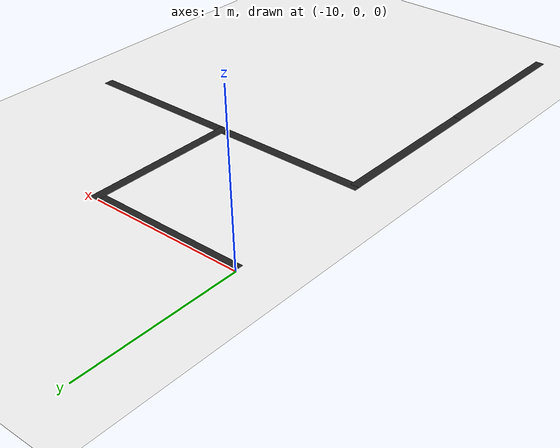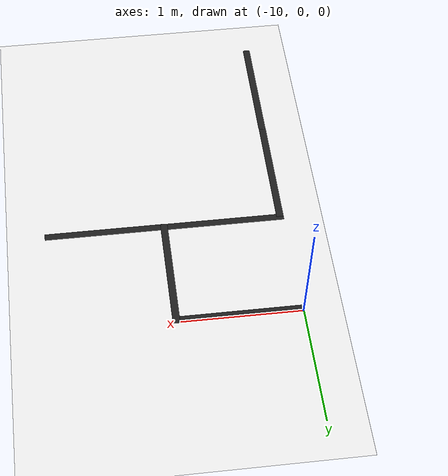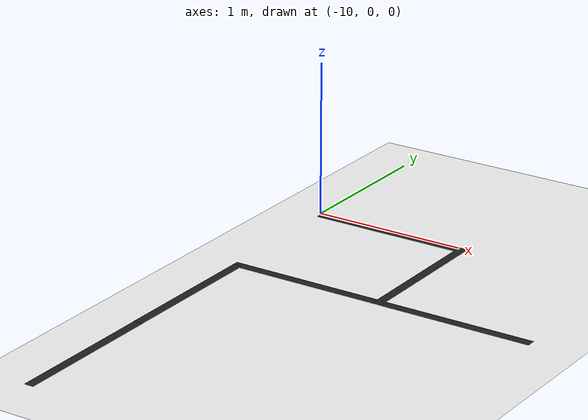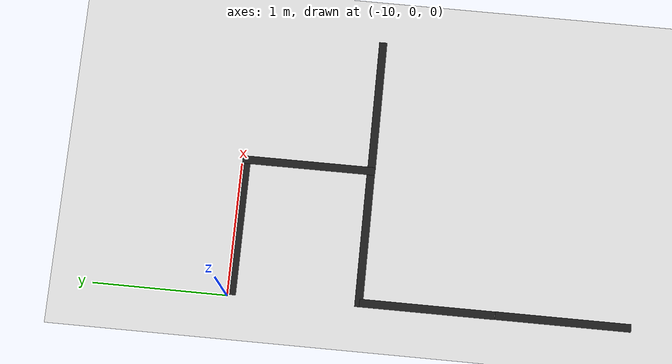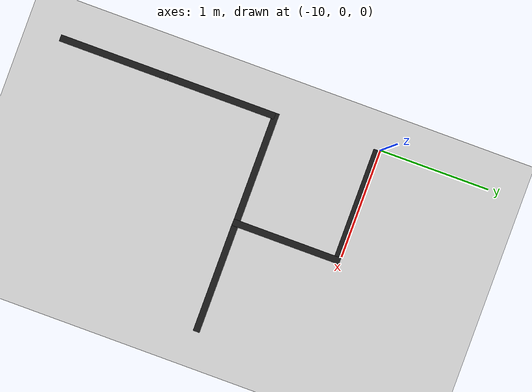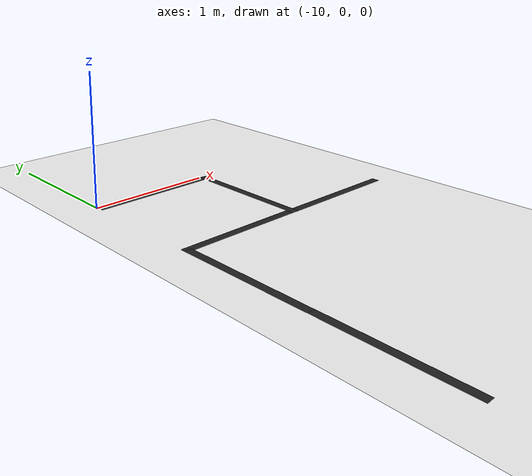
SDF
<sdf version="1.7">
 <world name="default">
  <model name="ground_plane">
   <static>1</static>
   <link name="link">
    <collision name="collision">
     <geometry><plane><normal>0 0 1</normal><size>100 100</size></plane></geometry>
     <surface>
      <contact><collide_bitmask>65535</collide_bitmask></contact>
      <friction><ode><mu>100</mu><mu2>50</mu2></ode></friction>
     </surface>
    </collision>
    <visual name="visual">
     <cast_shadows>0</cast_shadows>
     <geometry><plane><normal>0 0 1</normal><size>100 100</size></plane></geometry>
     <material>
      <script><uri>file://media/materials/scripts/gazebo.material</uri><name>Gazebo/White</name></script>
     </material>
    </visual>
   </link>
  </model>
  <model name="right_segment">
   <link name="right_link">
    <inertial>
     <mass>1</mass>
     <inertia>
      <ixx>0.166667</ixx>
      <ixy>0</ixy>
      <ixz>0</ixz>
      <iyy>0.166667</iyy>
      <iyz>0</iyz>
      <izz>0.166667</izz>
     </inertia>
    </inertial>
    <visual name="visual">
     <geometry><box><size>0.06 1 0.000937</size></box></geometry>
     <material>
      <script><name>Gazebo/Black</name><uri>file://media/materials/scripts/gazebo.material</uri></script>
      <shader type="pixel"><normal_map>__default__</normal_map></shader>
      <ambient>0 0 0 1</ambient>
      <diffuse>0 0 0 1</diffuse>
      <specular>0.1 0.1 0.1 1</specular>
      <emissive>0 0 0 1</emissive>
     </material>
    </visual>
    <collision name="collision">
     <geometry><box><size>0.06 1 0.000937</size></box></geometry>
     <surface>
      <friction>
       <ode><mu>1</mu><mu2>1</mu2><fdir1>0 0 0</fdir1><slip1>0</slip1><slip2>0</slip2></ode>
       <torsional>
        <coefficient>1</coefficient>
        <patch_radius>0</patch_radius>
        <surface_radius>0</surface_radius>
        <use_patch_radius>1</use_patch_radius>
        <ode><slip>0</slip></ode>
       </torsional>
      </friction>
      <bounce><restitution_coefficient>0</restitution_coefficient><threshold>1e+06</threshold></bounce>
      <contact>
       <collide_without_contact>0</collide_without_contact>
       <collide_without_contact_bitmask>1</collide_without_contact_bitmask>
       <collide_bitmask>1</collide_bitmask>
       <ode>
        <soft_cfm>0</soft_cfm>
        <soft_erp>0.2</soft_erp>
        <kp>1e+13</kp>
        <kd>1</kd>
        <max_vel>0.01</max_vel>
        <min_depth>0</min_depth>
       </ode>
       <bullet>
        <split_impulse>1</split_impulse>
        <split_impulse_penetration_threshold>-0.01</split_impulse_penetration_threshold>
        <soft_cfm>0</soft_cfm>
        <soft_erp>0.2</soft_erp>
        <kp>1e+13</kp>
        <kd>1</kd>
       </bullet>
      </contact>
     </surface>
    </collision>
   </link>
   <static>1</static>
   <pose>-8.96406 -0.498196 0.000468 0 -0 1.4e-05</pose>
  </model>
  <model name="segment_0">
   <link name="straight_link">
    <inertial>
     <mass>1</mass>
     <inertia>
      <ixx>0.166667</ixx>
      <ixy>0</ixy>
      <ixz>0</ixz>
      <iyy>0.166667</iyy>
      <iyz>0</iyz>
      <izz>0.166667</izz>
     </inertia>
    </inertial>
    <visual name="visual">
     <geometry><box><size>1 0.06 0.000937</size></box></geometry>
     <material>
      <script><name>Gazebo/Black</name><uri>file://media/materials/scripts/gazebo.material</uri></script>
      <shader type="pixel"><normal_map>__default__</normal_map></shader>
      <ambient>0 0 0 1</ambient>
      <diffuse>0 0 0 1</diffuse>
      <specular>0.1 0.1 0.1 1</specular>
      <emissive>0 0 0 1</emissive>
     </material>
    </visual>
    <collision name="collision">
     <geometry><box><size>1 0.06 0.000937</size></box></geometry>
     <surface>
      <friction>
       <ode><mu>1</mu><mu2>1</mu2><fdir1>0 0 0</fdir1><slip1>0</slip1><slip2>0</slip2></ode>
       <torsional>
        <coefficient>1</coefficient>
        <patch_radius>0</patch_radius>
        <surface_radius>0</surface_radius>
        <use_patch_radius>1</use_patch_radius>
        <ode><slip>0</slip></ode>
       </torsional>
      </friction>
      <bounce><restitution_coefficient>0</restitution_coefficient><threshold>1e+06</threshold></bounce>
      <contact>
       <collide_without_contact>0</collide_without_contact>
       <collide_without_contact_bitmask>1</collide_without_contact_bitmask>
       <collide_bitmask>1</collide_bitmask>
       <ode>
        <soft_cfm>0</soft_cfm>
        <soft_erp>0.2</soft_erp>
        <kp>1e+13</kp>
        <kd>1</kd>
        <max_vel>0.01</max_vel>
        <min_depth>0</min_depth>
       </ode>
       <bullet>
        <split_impulse>1</split_impulse>
        <split_impulse_penetration_threshold>-0.01</split_impulse_penetration_threshold>
        <soft_cfm>0</soft_cfm>
        <soft_erp>0.2</soft_erp>
        <kp>1e+13</kp>
        <kd>1</kd>
       </bullet>
      </contact>
     </surface>
    </collision>
   </link>
   <static>1</static>
   <pose>-9.49128 -0.967715 0 0 -0 0</pose>
  </model>
  <model name="segment_1">
   <link name="straight_link">
    <inertial>
     <mass>1</mass>
     <inertia>
      <ixx>0.166667</ixx>
      <ixy>0</ixy>
      <ixz>0</ixz>
      <iyy>0.166667</iyy>
      <iyz>0</iyz>
      <izz>0.166667</izz>
     </inertia>
    </inertial>
    <visual name="visual">
     <geometry><box><size>1 0.06 0.000937</size></box></geometry>
     <material>
      <script><name>Gazebo/Black</name><uri>file://media/materials/scripts/gazebo.material</uri></script>
      <shader type="pixel"><normal_map>__default__</normal_map></shader>
      <ambient>0 0 0 1</ambient>
      <diffuse>0 0 0 1</diffuse>
      <specular>0.1 0.1 0.1 1</specular>
      <emissive>0 0 0 1</emissive>
     </material>
    </visual>
    <collision name="collision">
     <geometry><box><size>1 0.06 0.000937</size></box></geometry>
     <surface>
      <friction>
       <ode><mu>1</mu><mu2>1</mu2><fdir1>0 0 0</fdir1><slip1>0</slip1><slip2>0</slip2></ode>
       <torsional>
        <coefficient>1</coefficient>
        <patch_radius>0</patch_radius>
        <surface_radius>0</surface_radius>
        <use_patch_radius>1</use_patch_radius>
        <ode><slip>0</slip></ode>
       </torsional>
      </friction>
      <bounce><restitution_coefficient>0</restitution_coefficient><threshold>1e+06</threshold></bounce>
      <contact>
       <collide_without_contact>0</collide_without_contact>
       <collide_without_contact_bitmask>1</collide_without_contact_bitmask>
       <collide_bitmask>1</collide_bitmask>
       <ode>
        <soft_cfm>0</soft_cfm>
        <soft_erp>0.2</soft_erp>
        <kp>1e+13</kp>
        <kd>1</kd>
        <max_vel>0.01</max_vel>
        <min_depth>0</min_depth>
       </ode>
       <bullet>
        <split_impulse>1</split_impulse>
        <split_impulse_penetration_threshold>-0.01</split_impulse_penetration_threshold>
        <soft_cfm>0</soft_cfm>
        <soft_erp>0.2</soft_erp>
        <kp>1e+13</kp>
        <kd>1</kd>
       </bullet>
      </contact>
     </surface>
    </collision>
   </link>
   <static>1</static>
   <pose>-8.45229 -0.969593 0 0 -0 0</pose>
  </model>
  <model name="segment">
   <link name="straight_link">
    <inertial>
     <mass>1</mass>
     <inertia>
      <ixx>0.166667</ixx>
      <ixy>0</ixy>
      <ixz>0</ixz>
      <iyy>0.166667</iyy>
      <iyz>0</iyz>
      <izz>0.166667</izz>
     </inertia>
    </inertial>
    <visual name="visual">
     <geometry><box><size>1 0.06 0.000937</size></box></geometry>
     <material>
      <script><name>Gazebo/Black</name><uri>file://media/materials/scripts/gazebo.material</uri></script>
      <shader type="pixel"><normal_map>__default__</normal_map></shader>
      <ambient>0 0 0 1</ambient>
      <diffuse>0 0 0 1</diffuse>
      <specular>0.1 0.1 0.1 1</specular>
      <emissive>0 0 0 1</emissive>
     </material>
    </visual>
    <collision name="collision">
     <geometry><box><size>1 0.06 0.000937</size></box></geometry>
     <surface>
      <friction>
       <ode><mu>1</mu><mu2>1</mu2><fdir1>0 0 0</fdir1><slip1>0</slip1><slip2>0</slip2></ode>
       <torsional>
        <coefficient>1</coefficient>
        <patch_radius>0</patch_radius>
        <surface_radius>0</surface_radius>
        <use_patch_radius>1</use_patch_radius>
        <ode><slip>0</slip></ode>
       </torsional>
      </friction>
      <bounce><restitution_coefficient>0</restitution_coefficient><threshold>1e+06</threshold></bounce>
      <contact>
       <collide_without_contact>0</collide_without_contact>
       <collide_without_contact_bitmask>1</collide_without_contact_bitmask>
       <collide_bitmask>1</collide_bitmask>
       <ode>
        <soft_cfm>0</soft_cfm>
        <soft_erp>0.2</soft_erp>
        <kp>1e+13</kp>
        <kd>1</kd>
        <max_vel>0.01</max_vel>
        <min_depth>0</min_depth>
       </ode>
       <bullet>
        <split_impulse>1</split_impulse>
        <split_impulse_penetration_threshold>-0.01</split_impulse_penetration_threshold>
        <soft_cfm>0</soft_cfm>
        <soft_erp>0.2</soft_erp>
        <kp>1e+13</kp>
        <kd>1</kd>
       </bullet>
      </contact>
     </surface>
    </collision>
   </link>
   <static>1</static>
   <pose>-9.49006 -0.029184 0 0 -0 0</pose>
  </model>
  <model name="right_segment_18">
   <link name="right_link">
    <inertial>
     <mass>1</mass>
     <inertia>
      <ixx>0.166667</ixx>
      <ixy>0</ixy>
      <ixz>0</ixz>
      <iyy>0.166667</iyy>
      <iyz>0</iyz>
      <izz>0.166667</izz>
     </inertia>
    </inertial>
    <visual name="visual">
     <geometry><box><size>0.06 1 0.000937</size></box></geometry>
     <material>
      <script><name>Gazebo/Black</name><uri>file://media/materials/scripts/gazebo.material</uri></script>
      <shader type="pixel"><normal_map>__default__</normal_map></shader>
      <ambient>0 0 0 1</ambient>
      <diffuse>0 0 0 1</diffuse>
      <specular>0.1 0.1 0.1 1</specular>
      <emissive>0 0 0 1</emissive>
     </material>
    </visual>
    <collision name="collision">
     <geometry><box><size>0.06 1 0.000937</size></box></geometry>
     <surface>
      <friction>
       <ode><mu>1</mu><mu2>1</mu2><fdir1>0 0 0</fdir1><slip1>0</slip1><slip2>0</slip2></ode>
       <torsional>
        <coefficient>1</coefficient>
        <patch_radius>0</patch_radius>
        <surface_radius>0</surface_radius>
        <use_patch_radius>1</use_patch_radius>
        <ode><slip>0</slip></ode>
       </torsional>
      </friction>
      <bounce><restitution_coefficient>0</restitution_coefficient><threshold>1e+06</threshold></bounce>
      <contact>
       <collide_without_contact>0</collide_without_contact>
       <collide_without_contact_bitmask>1</collide_without_contact_bitmask>
       <collide_bitmask>1</collide_bitmask>
       <ode>
        <soft_cfm>0</soft_cfm>
        <soft_erp>0.2</soft_erp>
        <kp>1e+13</kp>
        <kd>1</kd>
        <max_vel>0.01</max_vel>
        <min_depth>0</min_depth>
       </ode>
       <bullet>
        <split_impulse>1</split_impulse>
        <split_impulse_penetration_threshold>-0.01</split_impulse_penetration_threshold>
        <soft_cfm>0</soft_cfm>
        <soft_erp>0.2</soft_erp>
        <kp>1e+13</kp>
        <kd>1</kd>
       </bullet>
      </contact>
     </surface>
    </collision>
   </link>
   <static>1</static>
   <pose>-9.96126 -1.4717 0.000468 0 -0 1.4e-05</pose>
  </model>
  <model name="right_segment_19">
   <link name="right_link">
    <inertial>
     <mass>1</mass>
     <inertia>
      <ixx>0.166667</ixx>
      <ixy>0</ixy>
      <ixz>0</ixz>
      <iyy>0.166667</iyy>
      <iyz>0</iyz>
      <izz>0.166667</izz>
     </inertia>
    </inertial>
    <visual name="visual">
     <geometry><box><size>0.06 1 0.000937</size></box></geometry>
     <material>
      <script><name>Gazebo/Black</name><uri>file://media/materials/scripts/gazebo.material</uri></script>
      <shader type="pixel"><normal_map>__default__</normal_map></shader>
      <ambient>0 0 0 1</ambient>
      <diffuse>0 0 0 1</diffuse>
      <specular>0.1 0.1 0.1 1</specular>
      <emissive>0 0 0 1</emissive>
     </material>
    </visual>
    <collision name="collision">
     <geometry><box><size>0.06 1 0.000937</size></box></geometry>
     <surface>
      <friction>
       <ode><mu>1</mu><mu2>1</mu2><fdir1>0 0 0</fdir1><slip1>0</slip1><slip2>0</slip2></ode>
       <torsional>
        <coefficient>1</coefficient>
        <patch_radius>0</patch_radius>
        <surface_radius>0</surface_radius>
        <use_patch_radius>1</use_patch_radius>
        <ode><slip>0</slip></ode>
       </torsional>
      </friction>
      <bounce><restitution_coefficient>0</restitution_coefficient><threshold>1e+06</threshold></bounce>
      <contact>
       <collide_without_contact>0</collide_without_contact>
       <collide_without_contact_bitmask>1</collide_without_contact_bitmask>
       <collide_bitmask>1</collide_bitmask>
       <ode>
        <soft_cfm>0</soft_cfm>
        <soft_erp>0.2</soft_erp>
        <kp>1e+13</kp>
        <kd>1</kd>
        <max_vel>0.01</max_vel>
        <min_depth>0</min_depth>
       </ode>
       <bullet>
        <split_impulse>1</split_impulse>
        <split_impulse_penetration_threshold>-0.01</split_impulse_penetration_threshold>
        <soft_cfm>0</soft_cfm>
        <soft_erp>0.2</soft_erp>
        <kp>1e+13</kp>
        <kd>1</kd>
       </bullet>
      </contact>
     </surface>
    </collision>
   </link>
   <static>1</static>
   <pose>-9.96007 -2.47284 0.000468 0 -0 1.4e-05</pose>
  </model>
 </world>
</sdf>
